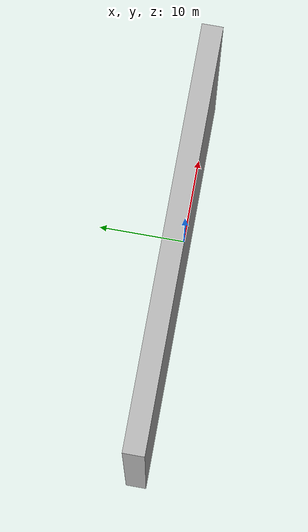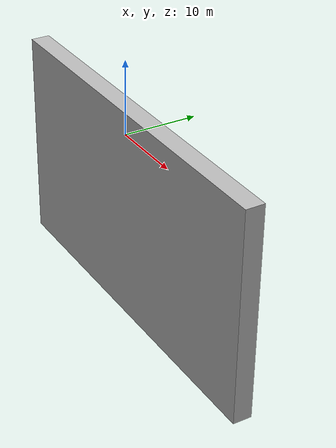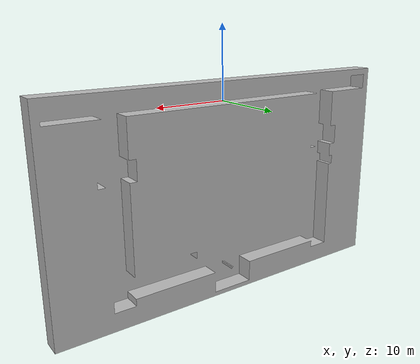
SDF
<?xml version='1.0'?>
<sdf version='1.4'>
  <model name="eccr_track">
    <link name="link">
      <collision name="collision">
        <geometry>
          <mesh>
            <uri>model://tbd_description/meshes/eccr_track.stl</uri>
          </mesh>
        </geometry>
      </collision>
      <visual name="visual">
        <geometry>
          <mesh>
            <uri>model://tbd_description/meshes/eccr_track.stl</uri>
          </mesh>
        </geometry>
      </visual>
    </link>
    <static>1</static>
  </model>
</sdf>
